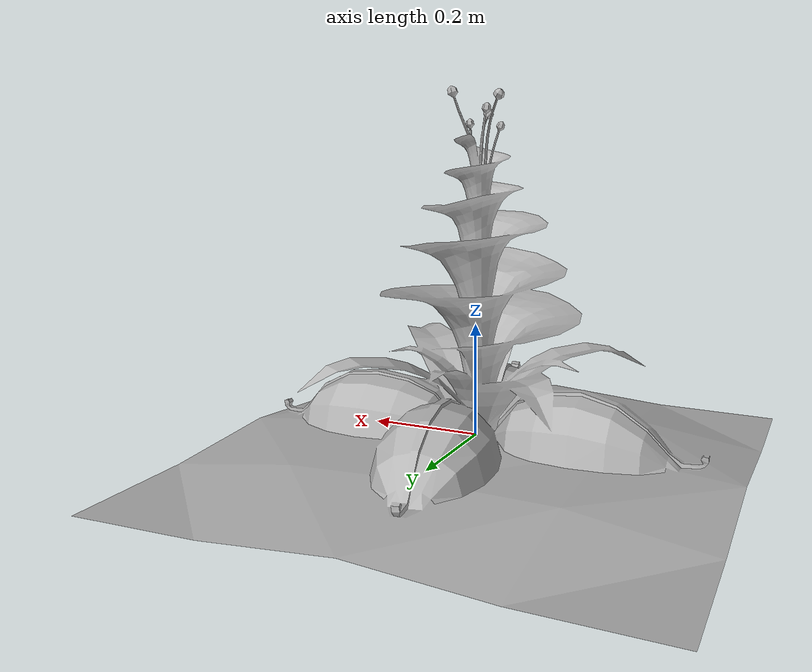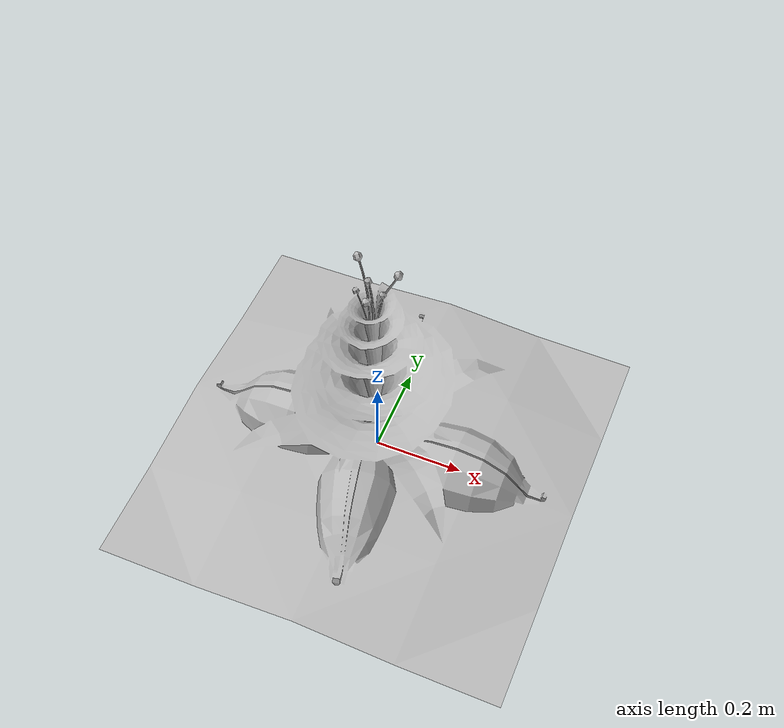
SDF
<?xml version="1.0" ?>
<sdf version='1.4'>
  <model name="plant_flower">
      <static>1</static>
        <link name='link_1'>
            <visual name='visual'>
            <pose frame=''>0 0 0 0 0 0</pose>
            <geometry>
            <mesh>
                <uri>model://plant_flower/meshes/plant_flower.dae</uri>
                <scale>0.1 0.1 0.1</scale>
            </mesh>
            </geometry>
            <cast_shadows>0</cast_shadows>
            <transparency>0</transparency>
        </visual>

        <collision name='collision'>
            <laser_retro>0</laser_retro>
            <pose frame=''>0 0 0 0 0 0</pose>
            <geometry>
            <mesh>
                <uri>model://plant_flower/meshes/plant_flower.stl</uri>
                <scale>0.1 0.1 0.1</scale>
            </mesh>
            </geometry>
        </collision>
        </link>
  </model>
</sdf>
